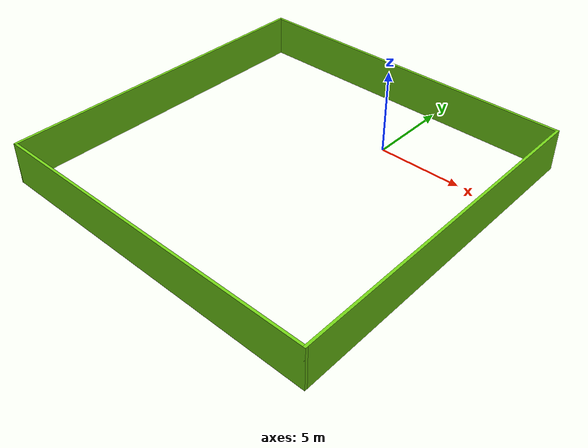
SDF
<?xml version='1.0'?>
<sdf version='1.7'>
  <model name='20x20_world'>
    <pose>-2.24947 -5.33735 0 0 -0 0</pose>
    <link name='Wall_22'>
      <collision name='Wall_22_Collision'>
        <geometry>
          <box>
            <size>20.25 0.15 2.5</size>
          </box>
        </geometry>
        <pose>0 0 1.25 0 -0 0</pose>
      </collision>
      <visual name='Wall_22_Visual'>
        <pose>0 0 1.25 0 -0 0</pose>
        <geometry>
          <box>
            <size>20.25 0.15 2.5</size>
          </box>
        </geometry>
        <material>
          <script>
            <uri>file://media/materials/scripts/gazebo.material</uri>
            <name>Gazebo/Grey</name>
          </script>
          <ambient>0.45098 0.823529 0.0862745 1</ambient>
        </material>
        <meta>
          <layer>0</layer>
        </meta>
      </visual>
      <pose>-10.05 -0 0 0 -0 -1.5708</pose>
    </link>
    <link name='Wall_24'>
      <collision name='Wall_24_Collision'>
        <geometry>
          <box>
            <size>20.25 0.15 2.5</size>
          </box>
        </geometry>
        <pose>0 0 1.25 0 -0 0</pose>
      </collision>
      <visual name='Wall_24_Visual'>
        <pose>0 0 1.25 0 -0 0</pose>
        <geometry>
          <box>
            <size>20.25 0.15 2.5</size>
          </box>
        </geometry>
        <material>
          <script>
            <uri>file://media/materials/scripts/gazebo.material</uri>
            <name>Gazebo/Grey</name>
          </script>
          <ambient>0.45098 0.823529 0.0862745 1</ambient>
        </material>
        <meta>
          <layer>0</layer>
        </meta>
      </visual>
      <pose>-0 -10.05 0 0 -0 0</pose>
    </link>
    <link name='Wall_28'>
      <collision name='Wall_28_Collision'>
        <geometry>
          <box>
            <size>20.25 0.15 2.5</size>
          </box>
        </geometry>
        <pose>0 0 1.25 0 -0 0</pose>
      </collision>
      <visual name='Wall_28_Visual'>
        <pose>0 0 1.25 0 -0 0</pose>
        <geometry>
          <box>
            <size>20.25 0.15 2.5</size>
          </box>
        </geometry>
        <material>
          <script>
            <uri>file://media/materials/scripts/gazebo.material</uri>
            <name>Gazebo/Grey</name>
          </script>
          <ambient>0.45098 0.823529 0.0862745 1</ambient>
        </material>
        <meta>
          <layer>0</layer>
        </meta>
      </visual>
      <pose>-0 10.05 0 0 -0 0</pose>
    </link>
    <link name='Wall_29'>
      <collision name='Wall_29_Collision'>
        <geometry>
          <box>
            <size>20.25 0.15 2.5</size>
          </box>
        </geometry>
        <pose>0 0 1.25 0 -0 0</pose>
      </collision>
      <visual name='Wall_29_Visual'>
        <pose>0 0 1.25 0 -0 0</pose>
        <geometry>
          <box>
            <size>20.25 0.15 2.5</size>
          </box>
        </geometry>
        <material>
          <script>
            <uri>file://media/materials/scripts/gazebo.material</uri>
            <name>Gazebo/Grey</name>
          </script>
          <ambient>0.45098 0.823529 0.0862745 1</ambient>
        </material>
        <meta>
          <layer>0</layer>
        </meta>
      </visual>
      <pose>10.05 -0 0 0 -0 -1.5708</pose>
    </link>
    <static>1</static>
  </model>
</sdf>
